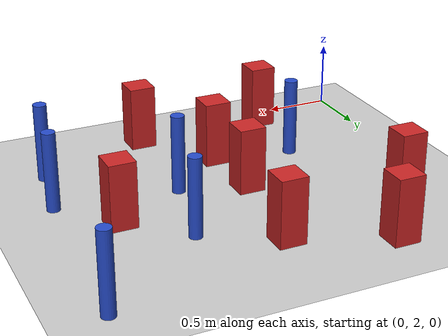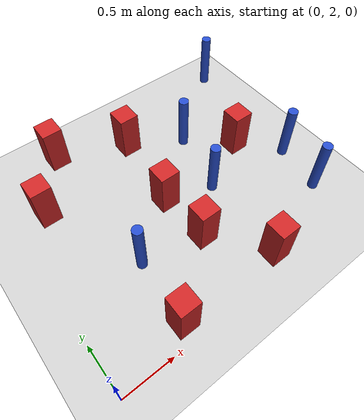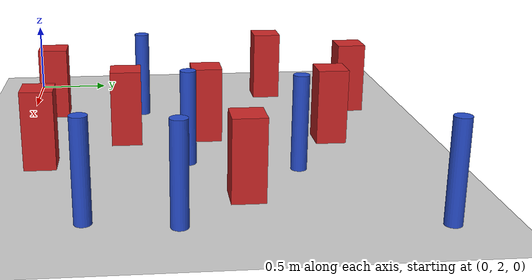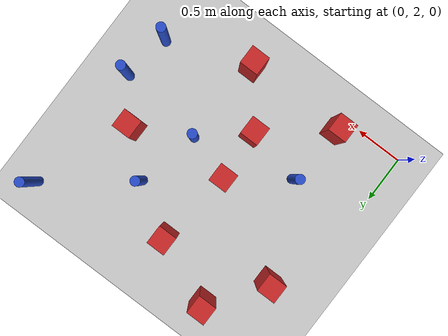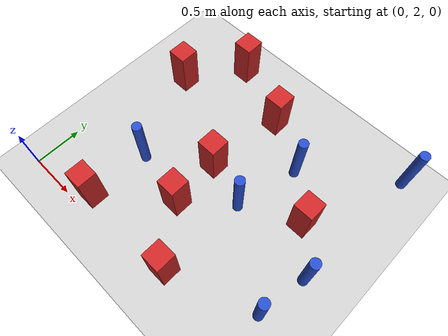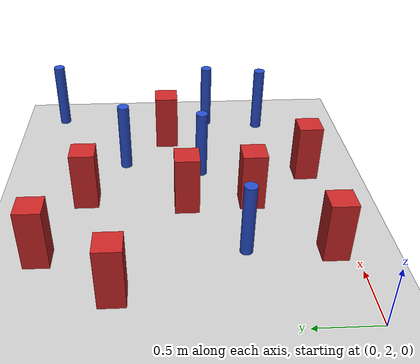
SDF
<sdf version="1.6">
 <world name="default">
  <model name="ground_plane">
   <static>1</static>
   <link name="link">
    <collision name="collision">
     <geometry><plane><normal>0 0 1</normal><size>100 100</size></plane></geometry>
     <surface><friction><ode><mu>100</mu><mu2>50</mu2></ode></friction></surface>
    </collision>
    <visual name="visual">
     <cast_shadows>0</cast_shadows>
     <geometry><plane><normal>0 0 1</normal><size>100 100</size></plane></geometry>
     <material>
      <ambient>1.0 1.0 1.0 1.0</ambient>
      <diffuse>0.8 0.8 0.8 1.0</diffuse>
      <specular>0.01 0.01 0.01 1.000000</specular>
     </material>
    </visual>
   </link>
  </model>
  <model name="square_post_obstacle5">
   <static>true</static>
   <pose>1.43845758457 4.05766834476 -6.11067671241e-07 -5.50515727128e-06 -8.79689657224e-07 2.37013304536e-05</pose>
   <link name="link">
    <pose>0 0 0.25 0 -0 0</pose>
    <inertial>
     <mass>100</mass>
     <inertia>
      <ixx>0.166667</ixx>
      <ixy>0</ixy>
      <ixz>0</ixz>
      <iyy>0.166667</iyy>
      <iyz>0</iyz>
      <izz>0.166667</izz>
     </inertia>
    </inertial>
    <collision name="collision"><geometry><box><size>.2 .2 .5</size></box></geometry></collision>
    <visual name="visual">
     <geometry><box><size>.2 .2 .5</size></box></geometry>
     <material>
      <script><name>Gazebo/Red</name><uri>file://media/materials/scripts/gazebo.material</uri></script>
     </material>
    </visual>
   </link>
  </model>
  <model name="square_post_obstacle67">
   <static>true</static>
   <pose>0.333128637879 3.78804825467 -6.11067671241e-07 -5.50515727128e-06 -8.79689657224e-07 2.37013304536e-05</pose>
   <link name="link">
    <pose>0 0 0.25 0 -0 0</pose>
    <inertial>
     <mass>100</mass>
     <inertia>
      <ixx>0.166667</ixx>
      <ixy>0</ixy>
      <ixz>0</ixz>
      <iyy>0.166667</iyy>
      <iyz>0</iyz>
      <izz>0.166667</izz>
     </inertia>
    </inertial>
    <collision name="collision"><geometry><box><size>.2 .2 .5</size></box></geometry></collision>
    <visual name="visual">
     <geometry><box><size>.2 .2 .5</size></box></geometry>
     <material>
      <script><name>Gazebo/Red</name><uri>file://media/materials/scripts/gazebo.material</uri></script>
     </material>
    </visual>
   </link>
  </model>
  <model name="square_post_obstacle69">
   <static>true</static>
   <pose>1.76772093183 2.1682476589 -6.11067671241e-07 -5.50515727128e-06 -8.79689657224e-07 2.37013304536e-05</pose>
   <link name="link">
    <pose>0 0 0.25 0 -0 0</pose>
    <inertial>
     <mass>100</mass>
     <inertia>
      <ixx>0.166667</ixx>
      <ixy>0</ixy>
      <ixz>0</ixz>
      <iyy>0.166667</iyy>
      <iyz>0</iyz>
      <izz>0.166667</izz>
     </inertia>
    </inertial>
    <collision name="collision"><geometry><box><size>.2 .2 .5</size></box></geometry></collision>
    <visual name="visual">
     <geometry><box><size>.2 .2 .5</size></box></geometry>
     <material>
      <script><name>Gazebo/Red</name><uri>file://media/materials/scripts/gazebo.material</uri></script>
     </material>
    </visual>
   </link>
  </model>
  <model name="pole_obstacle96">
   <static>true</static>
   <pose>2.81538231102 4.40827197065 -9.47619616065e-06 5.49618799738e-07 2.3631041406e-07 -1.55090534801e-07</pose>
   <link name="link">
    <pose>0 0 0.3 0 -0 0</pose>
    <inertial>
     <mass>1</mass>
     <inertia><ixx>0.145833</ixx><ixy>0</ixy><ixz>0</ixz><iyy>0.145833</iyy><iyz>0</iyz><izz>0.125</izz></inertia>
    </inertial>
    <collision name="collision">
     <geometry><cylinder><radius>0.05</radius><length>.6</length></cylinder></geometry>
    </collision>
    <visual name="visual">
     <geometry><cylinder><radius>0.05</radius><length>.6</length></cylinder></geometry>
     <material>
      <script><name>Gazebo/Blue</name><uri>file://media/materials/scripts/gazebo.material</uri></script>
     </material>
    </visual>
   </link>
  </model>
  <model name="square_post_obstacle84">
   <static>true</static>
   <pose>0.739477897886 4.3556769147 -6.11067671241e-07 -5.50515727128e-06 -8.79689657224e-07 2.37013304536e-05</pose>
   <link name="link">
    <pose>0 0 0.25 0 -0 0</pose>
    <inertial>
     <mass>100</mass>
     <inertia>
      <ixx>0.166667</ixx>
      <ixy>0</ixy>
      <ixz>0</ixz>
      <iyy>0.166667</iyy>
      <iyz>0</iyz>
      <izz>0.166667</izz>
     </inertia>
    </inertial>
    <collision name="collision"><geometry><box><size>.2 .2 .5</size></box></geometry></collision>
    <visual name="visual">
     <geometry><box><size>.2 .2 .5</size></box></geometry>
     <material>
      <script><name>Gazebo/Red</name><uri>file://media/materials/scripts/gazebo.material</uri></script>
     </material>
    </visual>
   </link>
  </model>
  <model name="square_post_obstacle101">
   <static>true</static>
   <pose>1.33228030267 3.23295579836 -6.11067671241e-07 -5.50515727128e-06 -8.79689657224e-07 2.37013304536e-05</pose>
   <link name="link">
    <pose>0 0 0.25 0 -0 0</pose>
    <inertial>
     <mass>100</mass>
     <inertia>
      <ixx>0.166667</ixx>
      <ixy>0</ixy>
      <ixz>0</ixz>
      <iyy>0.166667</iyy>
      <iyz>0</iyz>
      <izz>0.166667</izz>
     </inertia>
    </inertial>
    <collision name="collision"><geometry><box><size>.2 .2 .5</size></box></geometry></collision>
    <visual name="visual">
     <geometry><box><size>.2 .2 .5</size></box></geometry>
     <material>
      <script><name>Gazebo/Red</name><uri>file://media/materials/scripts/gazebo.material</uri></script>
     </material>
    </visual>
   </link>
  </model>
  <model name="pole_obstacle126">
   <static>true</static>
   <pose>2.64059461518 2.47193051487 -9.47619616065e-06 5.49618799737e-07 2.36310414051e-07 -1.55090534807e-07</pose>
   <link name="link">
    <pose>0 0 0.3 0 -0 0</pose>
    <inertial>
     <mass>1</mass>
     <inertia><ixx>0.145833</ixx><ixy>0</ixy><ixz>0</ixz><iyy>0.145833</iyy><iyz>0</iyz><izz>0.125</izz></inertia>
    </inertial>
    <collision name="collision">
     <geometry><cylinder><radius>0.05</radius><length>.6</length></cylinder></geometry>
    </collision>
    <visual name="visual">
     <geometry><cylinder><radius>0.05</radius><length>.6</length></cylinder></geometry>
     <material>
      <script><name>Gazebo/Blue</name><uri>file://media/materials/scripts/gazebo.material</uri></script>
     </material>
    </visual>
   </link>
  </model>
  <model name="pole_obstacle127">
   <static>true</static>
   <pose>1.9676107457 3.75242339498 -9.47619616065e-06 5.49618799737e-07 2.36310414059e-07 -1.550905348e-07</pose>
   <link name="link">
    <pose>0 0 0.3 0 -0 0</pose>
    <inertial>
     <mass>1</mass>
     <inertia><ixx>0.145833</ixx><ixy>0</ixy><ixz>0</ixz><iyy>0.145833</iyy><iyz>0</iyz><izz>0.125</izz></inertia>
    </inertial>
    <collision name="collision">
     <geometry><cylinder><radius>0.05</radius><length>.6</length></cylinder></geometry>
    </collision>
    <visual name="visual">
     <geometry><cylinder><radius>0.05</radius><length>.6</length></cylinder></geometry>
     <material>
      <script><name>Gazebo/Blue</name><uri>file://media/materials/scripts/gazebo.material</uri></script>
     </material>
    </visual>
   </link>
  </model>
  <model name="pole_obstacle147">
   <static>true</static>
   <pose>1.81179698169 3.08271361004 -9.47619616065e-06 5.49618799737e-07 2.36310414062e-07 -1.55090534798e-07</pose>
   <link name="link">
    <pose>0 0 0.3 0 -0 0</pose>
    <inertial>
     <mass>1</mass>
     <inertia><ixx>0.145833</ixx><ixy>0</ixy><ixz>0</ixz><iyy>0.145833</iyy><iyz>0</iyz><izz>0.125</izz></inertia>
    </inertial>
    <collision name="collision">
     <geometry><cylinder><radius>0.05</radius><length>.6</length></cylinder></geometry>
    </collision>
    <visual name="visual">
     <geometry><cylinder><radius>0.05</radius><length>.6</length></cylinder></geometry>
     <material>
      <script><name>Gazebo/Blue</name><uri>file://media/materials/scripts/gazebo.material</uri></script>
     </material>
    </visual>
   </link>
  </model>
  <model name="square_post_obstacle137">
   <static>true</static>
   <pose>0.71732305236 2.17078598252 -6.11067671241e-07 -5.50515727128e-06 -8.79689657224e-07 2.37013304536e-05</pose>
   <link name="link">
    <pose>0 0 0.25 0 -0 0</pose>
    <inertial>
     <mass>100</mass>
     <inertia>
      <ixx>0.166667</ixx>
      <ixy>0</ixy>
      <ixz>0</ixz>
      <iyy>0.166667</iyy>
      <iyz>0</iyz>
      <izz>0.166667</izz>
     </inertia>
    </inertial>
    <collision name="collision"><geometry><box><size>.2 .2 .5</size></box></geometry></collision>
    <visual name="visual">
     <geometry><box><size>.2 .2 .5</size></box></geometry>
     <material>
      <script><name>Gazebo/Red</name><uri>file://media/materials/scripts/gazebo.material</uri></script>
     </material>
    </visual>
   </link>
  </model>
  <model name="pole_obstacle164">
   <static>true</static>
   <pose>0.757805686223 2.8145874232 -9.47619616065e-06 5.49618799737e-07 2.36310414066e-07 -1.55090534797e-07</pose>
   <link name="link">
    <pose>0 0 0.3 0 -0 0</pose>
    <inertial>
     <mass>1</mass>
     <inertia><ixx>0.145833</ixx><ixy>0</ixy><ixz>0</ixz><iyy>0.145833</iyy><iyz>0</iyz><izz>0.125</izz></inertia>
    </inertial>
    <collision name="collision">
     <geometry><cylinder><radius>0.05</radius><length>.6</length></cylinder></geometry>
    </collision>
    <visual name="visual">
     <geometry><cylinder><radius>0.05</radius><length>.6</length></cylinder></geometry>
     <material>
      <script><name>Gazebo/Blue</name><uri>file://media/materials/scripts/gazebo.material</uri></script>
     </material>
    </visual>
   </link>
  </model>
  <model name="square_post_obstacle198">
   <static>true</static>
   <pose>1.36275757598 2.69778762125 -6.11067671241e-07 -5.50515727128e-06 -8.79689657224e-07 2.37013304536e-05</pose>
   <link name="link">
    <pose>0 0 0.25 0 -0 0</pose>
    <inertial>
     <mass>100</mass>
     <inertia>
      <ixx>0.166667</ixx>
      <ixy>0</ixy>
      <ixz>0</ixz>
      <iyy>0.166667</iyy>
      <iyz>0</iyz>
      <izz>0.166667</izz>
     </inertia>
    </inertial>
    <collision name="collision"><geometry><box><size>.2 .2 .5</size></box></geometry></collision>
    <visual name="visual">
     <geometry><box><size>.2 .2 .5</size></box></geometry>
     <material>
      <script><name>Gazebo/Red</name><uri>file://media/materials/scripts/gazebo.material</uri></script>
     </material>
    </visual>
   </link>
  </model>
  <model name="pole_obstacle219">
   <static>true</static>
   <pose>2.72493630834 2.9779754361 -9.47619616065e-06 5.49618799737e-07 2.36310414051e-07 -1.55090534807e-07</pose>
   <link name="link">
    <pose>0 0 0.3 0 -0 0</pose>
    <inertial>
     <mass>1</mass>
     <inertia><ixx>0.145833</ixx><ixy>0</ixy><ixz>0</ixz><iyy>0.145833</iyy><iyz>0</iyz><izz>0.125</izz></inertia>
    </inertial>
    <collision name="collision">
     <geometry><cylinder><radius>0.05</radius><length>.6</length></cylinder></geometry>
    </collision>
    <visual name="visual">
     <geometry><cylinder><radius>0.05</radius><length>.6</length></cylinder></geometry>
     <material>
      <script><name>Gazebo/Blue</name><uri>file://media/materials/scripts/gazebo.material</uri></script>
     </material>
    </visual>
   </link>
  </model>
  <model name="square_post_obstacle206">
   <static>true</static>
   <pose>2.3699599502 3.37653997688 -6.11067671241e-07 -5.50515727128e-06 -8.79689657224e-07 2.37013304536e-05</pose>
   <link name="link">
    <pose>0 0 0.25 0 -0 0</pose>
    <inertial>
     <mass>100</mass>
     <inertia>
      <ixx>0.166667</ixx>
      <ixy>0</ixy>
      <ixz>0</ixz>
      <iyy>0.166667</iyy>
      <iyz>0</iyz>
      <izz>0.166667</izz>
     </inertia>
    </inertial>
    <collision name="collision"><geometry><box><size>.2 .2 .5</size></box></geometry></collision>
    <visual name="visual">
     <geometry><box><size>.2 .2 .5</size></box></geometry>
     <material>
      <script><name>Gazebo/Red</name><uri>file://media/materials/scripts/gazebo.material</uri></script>
     </material>
    </visual>
   </link>
  </model>
 </world>
</sdf>
